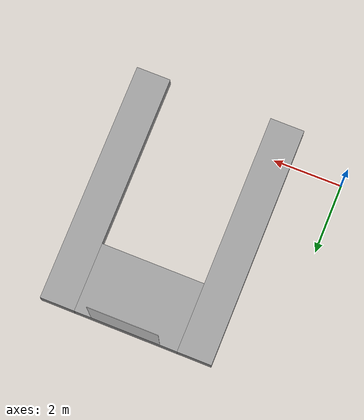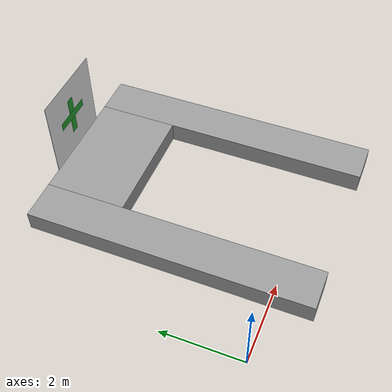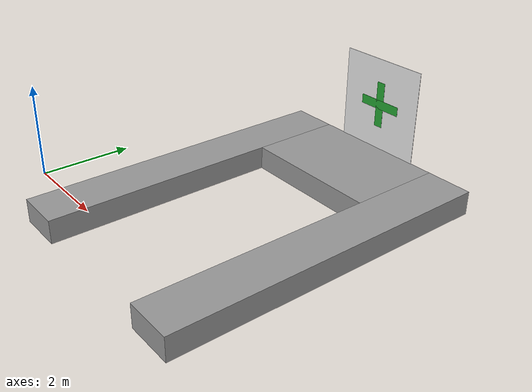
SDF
<sdf version="1.4">
 <world name="SandIsland">
  <scene><sky><clouds><speed>12</speed></clouds></sky></scene>
  <include><uri>model://sun</uri></include>
  <include><pose>4 4 -0.1 0 0 0</pose><uri>model://models/robotx_docking</uri></include>
 </world>
</sdf>

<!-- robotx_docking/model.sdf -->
<sdf version="1.4">
    <model name="robotx_docking">
        <pose>0 0 0 0 0 0</pose>
        <static>true</static>
        <link name="docking_link">
            <visual name="robotx_docking_front_v">
                <pose>0 1 0.25 0 0 0</pose>
                <geometry>
                    <box>
                        <size>3 2 0.5</size>
                    </box>
                </geometry>
                <material>
                    <script>
                        <uri>file://media/materials/scripts/gazebo.material</uri>
                        <name>Gazebo/Grey</name>
                    </script>
                </material>
            </visual>
            <visual name="robotx_docking_left_v">
                <pose>-2 -1.5 0.25 0 0 0</pose>
                <geometry>
                    <box>
                        <size>1 7 0.5</size>
                    </box>
                </geometry>
                <material>
                    <script>
                        <uri>file://media/materials/scripts/gazebo.material</uri>
                        <name>Gazebo/Grey</name>
                    </script>
                </material>
            </visual>
            <visual name="robotx_docking_right_v">
                <pose>2 -1.5 0.25 0 0 0</pose>
                <geometry>
                    <box>
                        <size>1 7 0.5</size>
                    </box>
                </geometry>
                <material>
                    <script>
                        <uri>file://media/materials/scripts/gazebo.material</uri>
                        <name>Gazebo/Grey</name>
                    </script>
                </material>
            </visual>
            <visual name="robotx_docking_panel_v">
                <pose>0 1.995 1.5 0 0 0</pose>
                <geometry>
                    <box>
                        <size>2 0.01 2</size>
                    </box>
                </geometry>
                <material>
                    <script>
                        <uri>file://media/materials/scripts/gazebo.material</uri>
                        <name>Gazebo/White</name>
                    </script>
                </material>
            </visual>
            <visual name="robotx_docking_panelCrossHoriz_v">
                <pose>0 1.99 1.5 0 0 0</pose>
                <geometry>
                    <box>
                        <size>1 0.01 0.2</size>
                    </box>
                </geometry>
                <material>
                    <script>
                        <uri>file://media/materials/scripts/gazebo.material</uri>
                        <name>Gazebo/Green</name>
                    </script>
                </material>
            </visual>
            <visual name="robotx_docking_panelCrossVert_v">
                <pose>0 1.99 1.5 0 0 0</pose>
                <geometry>
                    <box>
                        <size>0.2 0.01 1</size>
                    </box>
                </geometry>
                <material>
                    <script>
                        <uri>file://media/materials/scripts/gazebo.material</uri>
                        <name>Gazebo/Green</name>
                    </script>
                </material>
            </visual>

            <!-- Collisons -->
            <collision name="robotx_docking_front_v">
                <pose>0 1 0.25 0 0 0</pose>
                <geometry>
                    <box>
                        <size>3 2 0.5</size>
                    </box>
                </geometry>
            </collision>
            <collision name="robotx_docking_left_v">
                <pose>-2 -1.5 0.25 0 0 0</pose>
                <geometry>
                    <box>
                        <size>1 7 0.5</size>
                    </box>
                </geometry>
            </collision>
            <collision name="robotx_docking_right_v">
                <pose>2 -1.5 0.25 0 0 0</pose>
                <geometry>
                    <box>
                        <size>1 7 0.5</size>
                    </box>
                </geometry>
            </collision>
        </link>
    </model>
</sdf>
